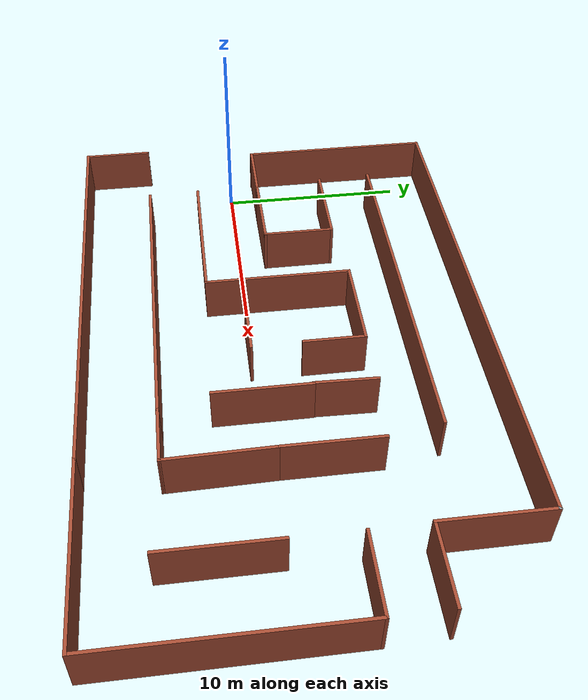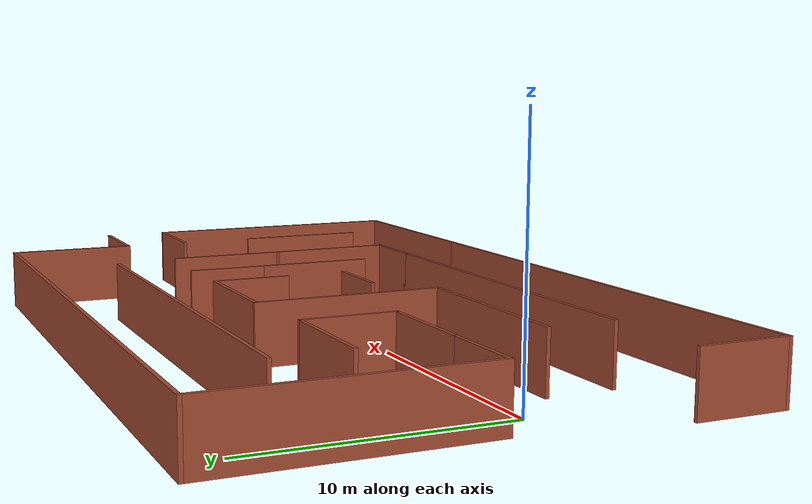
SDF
<?xml version='1.0'?>
<sdf version='1.7'>
  <model name='all_rounder_maze'>
    <pose>13.4275 1.63235 0 0 -0 0</pose>
    <link name='Wall_1'>
      <collision name='Wall_1_Collision'>
        <geometry>
          <box>
            <size>3.86802 0.15 2.5</size>
          </box>
        </geometry>
        <pose>0 0 1.25 0 -0 0</pose>
      </collision>
      <visual name='Wall_1_Visual'>
        <pose>0 0 1.25 0 -0 0</pose>
        <geometry>
          <box>
            <size>3.86802 0.15 2.5</size>
          </box>
        </geometry>
        <material>
          <script>
            <uri>file://media/materials/scripts/gazebo.material</uri>
            <name>Gazebo/Bricks</name>
          </script>
          <ambient>1 1 1 1</ambient>
        </material>
        <meta>
          <layer>0</layer>
        </meta>
      </visual>
      <pose>-7.22889 1.69396 0 0 -0 1.5708</pose>
    </link>
    <link name='Wall_11'>
      <collision name='Wall_11_Collision'>
        <geometry>
          <box>
            <size>4.75 0.15 2.5</size>
          </box>
        </geometry>
        <pose>0 0 1.25 0 -0 0</pose>
      </collision>
      <visual name='Wall_11_Visual'>
        <pose>0 0 1.25 0 -0 0</pose>
        <geometry>
          <box>
            <size>4.75 0.15 2.5</size>
          </box>
        </geometry>
        <material>
          <script>
            <uri>file://media/materials/scripts/gazebo.material</uri>
            <name>Gazebo/Bricks</name>
          </script>
          <ambient>1 1 1 1</ambient>
        </material>
        <meta>
          <layer>0</layer>
        </meta>
      </visual>
      <pose>-9.52889 3.55297 0 0 -0 3.14159</pose>
    </link>
    <link name='Wall_13'>
      <collision name='Wall_13_Collision'>
        <geometry>
          <box>
            <size>19 0.15 2.5</size>
          </box>
        </geometry>
        <pose>0 0 1.25 0 -0 0</pose>
      </collision>
      <visual name='Wall_13_Visual'>
        <pose>0 0 1.25 0 -0 0</pose>
        <geometry>
          <box>
            <size>19 0.15 2.5</size>
          </box>
        </geometry>
        <material>
          <script>
            <uri>file://media/materials/scripts/gazebo.material</uri>
            <name>Gazebo/Bricks</name>
          </script>
          <ambient>1 1 1 1</ambient>
        </material>
        <meta>
          <layer>0</layer>
        </meta>
      </visual>
      <pose>-2.53972 6.48264 0 0 -0 0</pose>
    </link>
    <link name='Wall_17'>
      <collision name='Wall_17_Collision'>
        <geometry>
          <box>
            <size>3.25 0.15 2.5</size>
          </box>
        </geometry>
        <pose>0 0 1.25 0 -0 0</pose>
      </collision>
      <visual name='Wall_17_Visual'>
        <pose>0 0 1.25 0 -0 0</pose>
        <geometry>
          <box>
            <size>3.25 0.15 2.5</size>
          </box>
        </geometry>
        <material>
          <script>
            <uri>file://media/materials/scripts/gazebo.material</uri>
            <name>Gazebo/Bricks</name>
          </script>
          <ambient>1 1 1 1</ambient>
        </material>
        <meta>
          <layer>0</layer>
        </meta>
      </visual>
      <pose>3.91007 2.46649 0 0 -0 -1.59329</pose>
    </link>
    <link name='Wall_18'>
      <collision name='Wall_18_Collision'>
        <geometry>
          <box>
            <size>5 0.15 2.5</size>
          </box>
        </geometry>
        <pose>0 0 1.25 0 -0 0</pose>
      </collision>
      <visual name='Wall_18_Visual'>
        <pose>0 0 1.25 0 -0 0</pose>
        <geometry>
          <box>
            <size>5 0.15 2.5</size>
          </box>
        </geometry>
        <material>
          <script>
            <uri>file://media/materials/scripts/gazebo.material</uri>
            <name>Gazebo/Bricks</name>
          </script>
          <ambient>1 1 1 1</ambient>
        </material>
        <meta>
          <layer>0</layer>
        </meta>
      </visual>
      <pose>3.91007 -1.50851 0 0 -0 -1.5708</pose>
    </link>
    <link name='Wall_20'>
      <collision name='Wall_20_Collision'>
        <geometry>
          <box>
            <size>3 0.15 2.5</size>
          </box>
        </geometry>
        <pose>0 0 1.25 0 -0 0</pose>
      </collision>
      <visual name='Wall_20_Visual'>
        <pose>0 0 1.25 0 -0 0</pose>
        <geometry>
          <box>
            <size>3 0.15 2.5</size>
          </box>
        </geometry>
        <material>
          <script>
            <uri>file://media/materials/scripts/gazebo.material</uri>
            <name>Gazebo/Bricks</name>
          </script>
          <ambient>1 1 1 1</ambient>
        </material>
        <meta>
          <layer>0</layer>
        </meta>
      </visual>
      <pose>-0.224008 -1.78798 0 0 -0 0</pose>
    </link>
    <link name='Wall_23'>
      <collision name='Wall_23_Collision'>
        <geometry>
          <box>
            <size>16.25 0.15 2.5</size>
          </box>
        </geometry>
        <pose>0 0 1.25 0 -0 0</pose>
      </collision>
      <visual name='Wall_23_Visual'>
        <pose>0 0 1.25 0 -0 0</pose>
        <geometry>
          <box>
            <size>16.25 0.15 2.5</size>
          </box>
        </geometry>
        <material>
          <script>
            <uri>file://media/materials/scripts/gazebo.material</uri>
            <name>Gazebo/Bricks</name>
          </script>
          <ambient>1 1 1 1</ambient>
        </material>
        <meta>
          <layer>0</layer>
        </meta>
      </visual>
      <pose>-3.43044 -6.4556 0 0 -0 0</pose>
    </link>
    <link name='Wall_24'>
      <collision name='Wall_24_Collision'>
        <geometry>
          <box>
            <size>3 0.15 2.5</size>
          </box>
        </geometry>
        <pose>0 0 1.25 0 -0 0</pose>
      </collision>
      <visual name='Wall_24_Visual'>
        <pose>0 0 1.25 0 -0 0</pose>
        <geometry>
          <box>
            <size>3 0.15 2.5</size>
          </box>
        </geometry>
        <material>
          <script>
            <uri>file://media/materials/scripts/gazebo.material</uri>
            <name>Gazebo/Bricks</name>
          </script>
          <ambient>1 1 1 1</ambient>
        </material>
        <meta>
          <layer>0</layer>
        </meta>
      </visual>
      <pose>6.04457 -6.4556 0 0 -0 0</pose>
    </link>
    <link name='Wall_25'>
      <collision name='Wall_25_Collision'>
        <geometry>
          <box>
            <size>5.48852 0.15 2.5</size>
          </box>
        </geometry>
        <pose>0 0 1.25 0 -0 0</pose>
      </collision>
      <visual name='Wall_25_Visual'>
        <pose>0 0 1.25 0 -0 0</pose>
        <geometry>
          <box>
            <size>5.48852 0.15 2.5</size>
          </box>
        </geometry>
        <material>
          <script>
            <uri>file://media/materials/scripts/gazebo.material</uri>
            <name>Gazebo/Bricks</name>
          </script>
          <ambient>1 1 1 1</ambient>
        </material>
        <meta>
          <layer>0</layer>
        </meta>
      </visual>
      <pose>7.42101 -3.78678 0 0 -0 1.58899</pose>
    </link>
    <link name='Wall_26'>
      <collision name='Wall_26_Collision'>
        <geometry>
          <box>
            <size>5 0.15 2.5</size>
          </box>
        </geometry>
        <pose>0 0 1.25 0 -0 0</pose>
      </collision>
      <visual name='Wall_26_Visual'>
        <pose>0 0 1.25 0 -0 0</pose>
        <geometry>
          <box>
            <size>5 0.15 2.5</size>
          </box>
        </geometry>
        <material>
          <script>
            <uri>file://media/materials/scripts/gazebo.material</uri>
            <name>Gazebo/Bricks</name>
          </script>
          <ambient>1 1 1 1</ambient>
        </material>
        <meta>
          <layer>0</layer>
        </meta>
      </visual>
      <pose>7.37246 1.30704 0 0 -0 1.5708</pose>
    </link>
    <link name='Wall_29'>
      <collision name='Wall_29_Collision'>
        <geometry>
          <box>
            <size>10.5 0.15 2.5</size>
          </box>
        </geometry>
        <pose>0 0 1.25 0 -0 0</pose>
      </collision>
      <visual name='Wall_29_Visual'>
        <pose>0 0 1.25 0 -0 0</pose>
        <geometry>
          <box>
            <size>10.5 0.15 2.5</size>
          </box>
        </geometry>
        <material>
          <script>
            <uri>file://media/materials/scripts/gazebo.material</uri>
            <name>Gazebo/Bricks</name>
          </script>
          <ambient>1 1 1 1</ambient>
        </material>
        <meta>
          <layer>0</layer>
        </meta>
      </visual>
      <pose>-14.9147 4.96299 0 0 -0 -1.5708</pose>
    </link>
    <link name='Wall_32'>
      <collision name='Wall_32_Collision'>
        <geometry>
          <box>
            <size>3.5 0.15 2.5</size>
          </box>
        </geometry>
        <pose>0 0 1.25 0 -0 0</pose>
      </collision>
      <visual name='Wall_32_Visual'>
        <pose>0 0 1.25 0 -0 0</pose>
        <geometry>
          <box>
            <size>3.5 0.15 2.5</size>
          </box>
        </geometry>
        <material>
          <script>
            <uri>file://media/materials/scripts/gazebo.material</uri>
            <name>Gazebo/Bricks</name>
          </script>
          <ambient>1 1 1 1</ambient>
        </material>
        <meta>
          <layer>0</layer>
        </meta>
      </visual>
      <pose>-13.2319 -0.184181 0 0 -0 3.14159</pose>
    </link>
    <link name='Wall_34'>
      <collision name='Wall_34_Collision'>
        <geometry>
          <box>
            <size>27 0.15 2.5</size>
          </box>
        </geometry>
        <pose>0 0 1.25 0 -0 0</pose>
      </collision>
      <visual name='Wall_34_Visual'>
        <pose>0 0 1.25 0 -0 0</pose>
        <geometry>
          <box>
            <size>27 0.15 2.5</size>
          </box>
        </geometry>
        <material>
          <script>
            <uri>file://media/materials/scripts/gazebo.material</uri>
            <name>Gazebo/Bricks</name>
          </script>
          <ambient>1 1 1 1</ambient>
        </material>
        <meta>
          <layer>0</layer>
        </meta>
      </visual>
      <pose>-1.48974 10.138 0 0 -0 0</pose>
    </link>
    <link name='Wall_35'>
      <collision name='Wall_35_Collision'>
        <geometry>
          <box>
            <size>0.15 0.15 2.5</size>
          </box>
        </geometry>
        <pose>0 0 1.25 0 -0 0</pose>
      </collision>
      <visual name='Wall_35_Visual'>
        <pose>0 0 1.25 0 -0 0</pose>
        <geometry>
          <box>
            <size>0.15 0.15 2.5</size>
          </box>
        </geometry>
        <material>
          <script>
            <uri>file://media/materials/scripts/gazebo.material</uri>
            <name>Gazebo/Grey</name>
          </script>
          <ambient>1 1 1 1</ambient>
        </material>
        <meta>
          <layer>0</layer>
        </meta>
      </visual>
      <pose>11.9353 10.138 0 0 -0 0</pose>
    </link>
    <link name='Wall_38'>
      <collision name='Wall_38_Collision'>
        <geometry>
          <box>
            <size>9 0.15 2.5</size>
          </box>
        </geometry>
        <pose>0 0 1.25 0 -0 0</pose>
      </collision>
      <visual name='Wall_38_Visual'>
        <pose>0 0 1.25 0 -0 0</pose>
        <geometry>
          <box>
            <size>9 0.15 2.5</size>
          </box>
        </geometry>
        <material>
          <script>
            <uri>file://media/materials/scripts/gazebo.material</uri>
            <name>Gazebo/Bricks</name>
          </script>
          <ambient>1 1 1 1</ambient>
        </material>
        <meta>
          <layer>0</layer>
        </meta>
      </visual>
      <pose>11.425 -10.138 0 0 -0 0</pose>
    </link>
    <link name='Wall_39'>
      <collision name='Wall_39_Collision'>
        <geometry>
          <box>
            <size>12.25 0.15 2.5</size>
          </box>
        </geometry>
        <pose>0 0 1.25 0 -0 0</pose>
      </collision>
      <visual name='Wall_39_Visual'>
        <pose>0 0 1.25 0 -0 0</pose>
        <geometry>
          <box>
            <size>12.25 0.15 2.5</size>
          </box>
        </geometry>
        <material>
          <script>
            <uri>file://media/materials/scripts/gazebo.material</uri>
            <name>Gazebo/Bricks</name>
          </script>
          <ambient>1 1 1 1</ambient>
        </material>
        <meta>
          <layer>0</layer>
        </meta>
      </visual>
      <pose>15.85 -4.08799 0 0 -0 1.5708</pose>
    </link>
    <link name='Wall_4'>
      <collision name='Wall_4_Collision'>
        <geometry>
          <box>
            <size>4.50004 0.15 2.5</size>
          </box>
        </geometry>
        <pose>0 0 1.25 0 -0 0</pose>
      </collision>
      <visual name='Wall_4_Visual'>
        <pose>0 0 1.25 0 -0 0</pose>
        <geometry>
          <box>
            <size>4.50004 0.15 2.5</size>
          </box>
        </geometry>
        <material>
          <script>
            <uri>file://media/materials/scripts/gazebo.material</uri>
            <name>Gazebo/Bricks</name>
          </script>
          <ambient>1 1 1 1</ambient>
        </material>
        <meta>
          <layer>0</layer>
        </meta>
      </visual>
      <pose>-9.38189 -0.174617 0 0 -0 -3.1372</pose>
    </link>
    <link name='Wall_40'>
      <collision name='Wall_40_Collision'>
        <geometry>
          <box>
            <size>4 0.15 2.5</size>
          </box>
        </geometry>
        <pose>0 0 1.25 0 -0 0</pose>
      </collision>
      <visual name='Wall_40_Visual'>
        <pose>0 0 1.25 0 -0 0</pose>
        <geometry>
          <box>
            <size>4 0.15 2.5</size>
          </box>
        </geometry>
        <material>
          <script>
            <uri>file://media/materials/scripts/gazebo.material</uri>
            <name>Gazebo/Bricks</name>
          </script>
          <ambient>1 1 1 1</ambient>
        </material>
        <meta>
          <layer>0</layer>
        </meta>
      </visual>
      <pose>13.925 1.96201 0 0 -0 3.14159</pose>
    </link>
    <link name='Wall_44'>
      <collision name='Wall_44_Collision'>
        <geometry>
          <box>
            <size>5.75 0.15 2.5</size>
          </box>
        </geometry>
        <pose>0 0 1.25 0 -0 0</pose>
      </collision>
      <visual name='Wall_44_Visual'>
        <pose>0 0 1.25 0 -0 0</pose>
        <geometry>
          <box>
            <size>5.75 0.15 2.5</size>
          </box>
        </geometry>
        <material>
          <script>
            <uri>file://media/materials/scripts/gazebo.material</uri>
            <name>Gazebo/Bricks</name>
          </script>
          <ambient>1 1 1 1</ambient>
        </material>
        <meta>
          <layer>0</layer>
        </meta>
      </visual>
      <pose>11.9833 -4.1625 0 0 -0 -1.5708</pose>
    </link>
    <link name='Wall_46'>
      <collision name='Wall_46_Collision'>
        <geometry>
          <box>
            <size>5.5 0.15 2.5</size>
          </box>
        </geometry>
        <pose>0 0 1.25 0 -0 0</pose>
      </collision>
      <visual name='Wall_46_Visual'>
        <pose>0 0 1.25 0 -0 0</pose>
        <geometry>
          <box>
            <size>5.5 0.15 2.5</size>
          </box>
        </geometry>
        <material>
          <script>
            <uri>file://media/materials/scripts/gazebo.material</uri>
            <name>Gazebo/Bricks</name>
          </script>
          <ambient>1 1 1 1</ambient>
        </material>
        <meta>
          <layer>0</layer>
        </meta>
      </visual>
      <pose>11.9353 7.46299 0 0 -0 -1.5708</pose>
    </link>
    <link name='Wall_47'>
      <collision name='Wall_47_Collision'>
        <geometry>
          <box>
            <size>4 0.15 2.5</size>
          </box>
        </geometry>
        <pose>0 0 1.25 0 -0 0</pose>
      </collision>
      <visual name='Wall_47_Visual'>
        <pose>0 0 1.25 0 -0 0</pose>
        <geometry>
          <box>
            <size>4 0.15 2.5</size>
          </box>
        </geometry>
        <material>
          <script>
            <uri>file://media/materials/scripts/gazebo.material</uri>
            <name>Gazebo/Bricks</name>
          </script>
          <ambient>1 1 1 1</ambient>
        </material>
        <meta>
          <layer>0</layer>
        </meta>
      </visual>
      <pose>13.8603 4.78799 0 0 -0 0</pose>
    </link>
    <link name='Wall_51'>
      <collision name='Wall_51_Collision'>
        <geometry>
          <box>
            <size>23 0.15 2.5</size>
          </box>
        </geometry>
        <pose>0 0 1.25 0 -0 0</pose>
      </collision>
      <visual name='Wall_51_Visual'>
        <pose>0 0 1.25 0 -0 0</pose>
        <geometry>
          <box>
            <size>23 0.15 2.5</size>
          </box>
        </geometry>
        <material>
          <script>
            <uri>file://media/materials/scripts/gazebo.material</uri>
            <name>Gazebo/Bricks</name>
          </script>
          <ambient>1 1 1 1</ambient>
        </material>
        <meta>
          <layer>0</layer>
        </meta>
      </visual>
      <pose>-4.425 -10.138 0 0 -0 3.14159</pose>
    </link>
    <link name='Wall_53'>
      <collision name='Wall_53_Collision'>
        <geometry>
          <box>
            <size>3.75 0.15 2.5</size>
          </box>
        </geometry>
        <pose>0 0 1.25 0 -0 0</pose>
      </collision>
      <visual name='Wall_53_Visual'>
        <pose>0 0 1.25 0 -0 0</pose>
        <geometry>
          <box>
            <size>3.75 0.15 2.5</size>
          </box>
        </geometry>
        <material>
          <script>
            <uri>file://media/materials/scripts/gazebo.material</uri>
            <name>Gazebo/Bricks</name>
          </script>
          <ambient>1 1 1 1</ambient>
        </material>
        <meta>
          <layer>0</layer>
        </meta>
      </visual>
      <pose>-15.85 -8.33799 0 0 -0 1.5708</pose>
    </link>
    <link name='Wall_6'>
      <collision name='Wall_6_Collision'>
        <geometry>
          <box>
            <size>8 0.15 2.5</size>
          </box>
        </geometry>
        <pose>0 0 1.25 0 -0 0</pose>
      </collision>
      <visual name='Wall_6_Visual'>
        <pose>0 0 1.25 0 -0 0</pose>
        <geometry>
          <box>
            <size>8 0.15 2.5</size>
          </box>
        </geometry>
        <material>
          <script>
            <uri>file://media/materials/scripts/gazebo.material</uri>
            <name>Gazebo/Bricks</name>
          </script>
          <ambient>1 1 1 1</ambient>
        </material>
        <meta>
          <layer>0</layer>
        </meta>
      </visual>
      <pose>-7.61867 -3.6827 0 0 -0 0</pose>
    </link>
    <link name='Wall_7'>
      <collision name='Wall_7_Collision'>
        <geometry>
          <box>
            <size>7.75 0.15 2.5</size>
          </box>
        </geometry>
        <pose>0 0 1.25 0 -0 0</pose>
      </collision>
      <visual name='Wall_7_Visual'>
        <pose>0 0 1.25 0 -0 0</pose>
        <geometry>
          <box>
            <size>7.75 0.15 2.5</size>
          </box>
        </geometry>
        <material>
          <script>
            <uri>file://media/materials/scripts/gazebo.material</uri>
            <name>Gazebo/Bricks</name>
          </script>
          <ambient>1 1 1 1</ambient>
        </material>
        <meta>
          <layer>0</layer>
        </meta>
      </visual>
      <pose>-3.69367 0.1173 0 0 -0 1.5708</pose>
    </link>
    <link name='Wall_8'>
      <collision name='Wall_8_Collision'>
        <geometry>
          <box>
            <size>5 0.15 2.5</size>
          </box>
        </geometry>
        <pose>0 0 1.25 0 -0 0</pose>
      </collision>
      <visual name='Wall_8_Visual'>
        <pose>0 0 1.25 0 -0 0</pose>
        <geometry>
          <box>
            <size>5 0.15 2.5</size>
          </box>
        </geometry>
        <material>
          <script>
            <uri>file://media/materials/scripts/gazebo.material</uri>
            <name>Gazebo/Bricks</name>
          </script>
          <ambient>1 1 1 1</ambient>
        </material>
        <meta>
          <layer>0</layer>
        </meta>
      </visual>
      <pose>-1.26867 3.9173 0 0 -0 0</pose>
    </link>
    <link name='Wall_9'>
      <collision name='Wall_9_Collision'>
        <geometry>
          <box>
            <size>3.25 0.15 2.5</size>
          </box>
        </geometry>
        <pose>0 0 1.25 0 -0 0</pose>
      </collision>
      <visual name='Wall_9_Visual'>
        <pose>0 0 1.25 0 -0 0</pose>
        <geometry>
          <box>
            <size>3.25 0.15 2.5</size>
          </box>
        </geometry>
        <material>
          <script>
            <uri>file://media/materials/scripts/gazebo.material</uri>
            <name>Gazebo/Bricks</name>
          </script>
          <ambient>1 1 1 1</ambient>
        </material>
        <meta>
          <layer>0</layer>
        </meta>
      </visual>
      <pose>1.15633 2.3673 0 0 -0 -1.5708</pose>
    </link>
    <static>1</static>
  </model>
</sdf>
